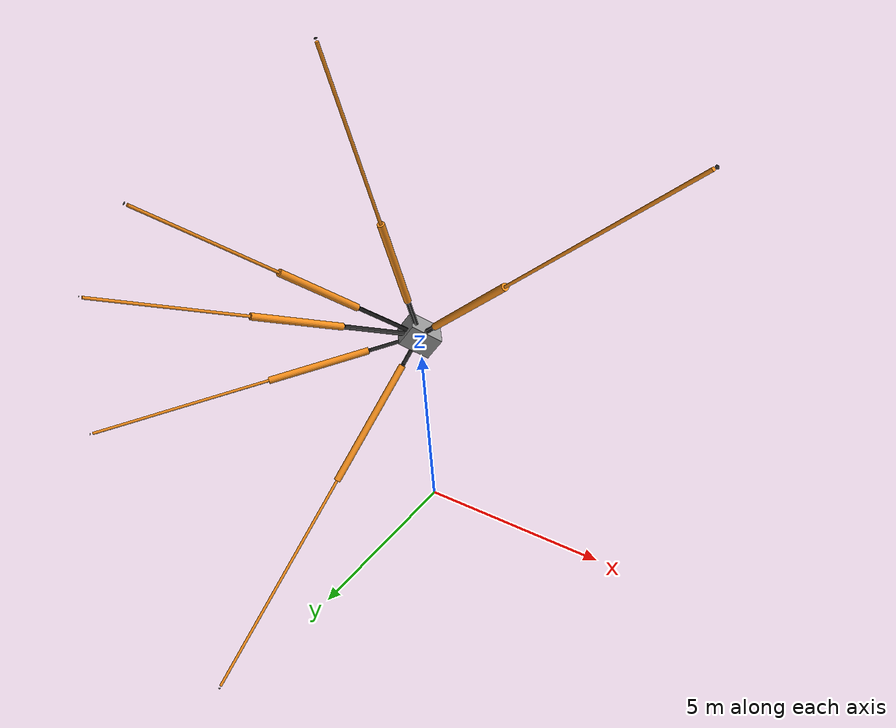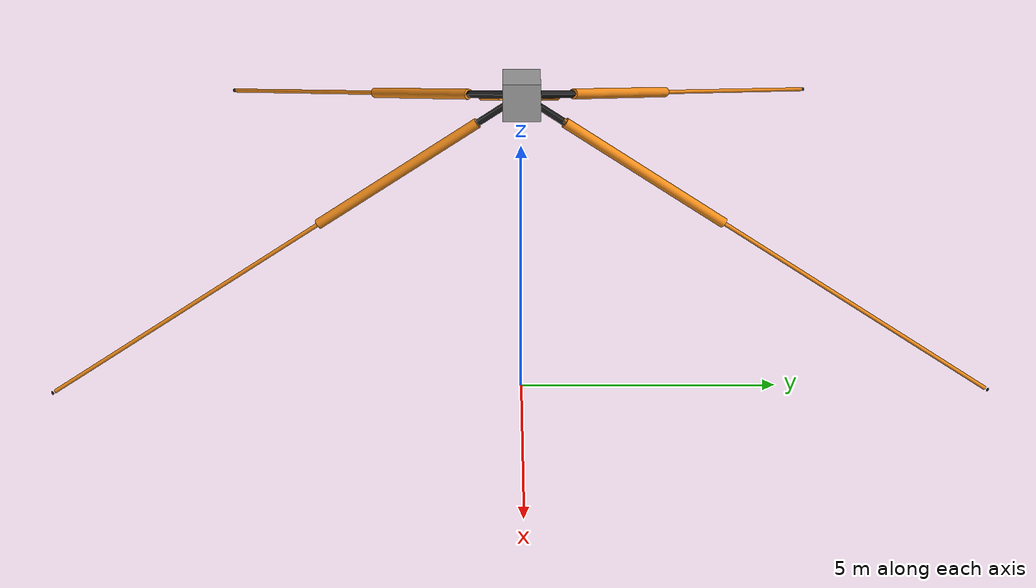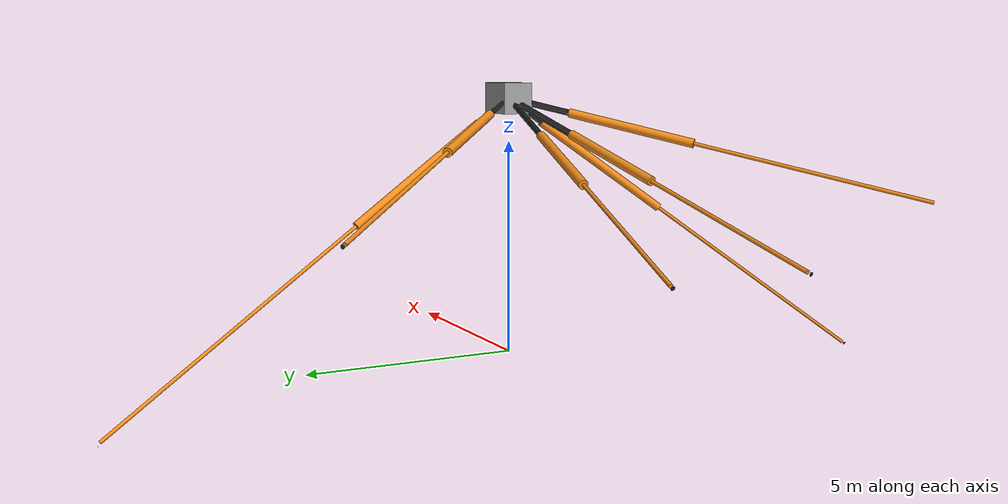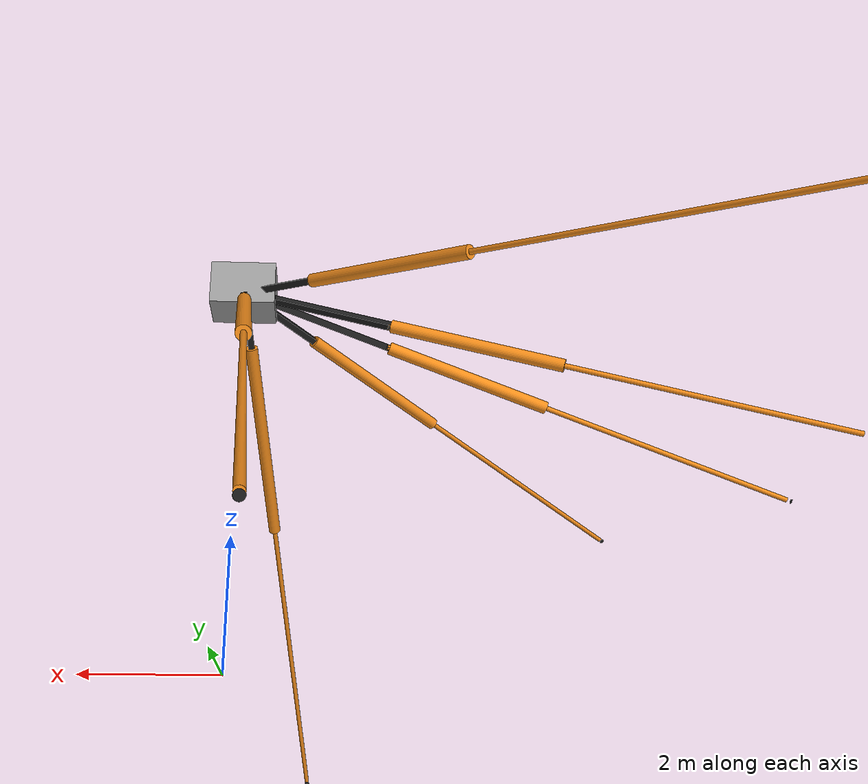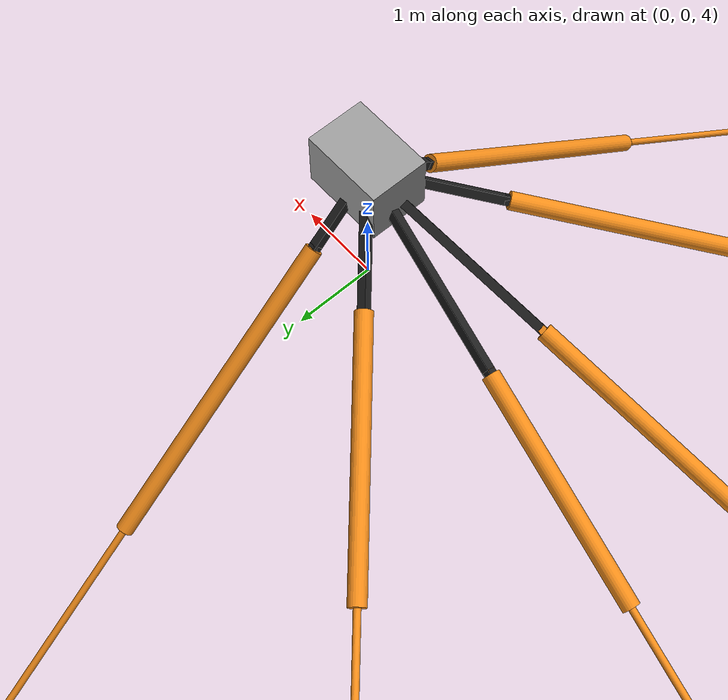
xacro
<?xml version="1.0"?>
<!-- Synthesis of an Ant Hexapod -->
<robot name="antmodel" xmlns:xacro="http://www.ros.org/wiki/xacro">

  <!-- Constants for robot dimensions -->
  <xacro:property name="PI" value="3.1415926535897931"/>

  <xacro:property name="body_mass" value="1" /> <!-- mean value about 10 mg -->
  <xacro:property name="leg_mass"  value="2" /> <!-- guessed value for one leg -> distributed evenly between femur & tibia -->
  <xacro:property name="mass"      value="1" /> <!-- dummy value for joints -->
<xacro:property name="coxa_mass"      value="1" /> <!-- coxa, DOF1 und DOF2 alle coxa_mass >> dritteln -->
<xacro:property name="femur_mass"      value="1" /> <!-- dummy value for joints -->
<xacro:property name="tibia_mass"      value="1" /> <!-- dummy value for joints -->
<xacro:property name="tarsus_mass"      value="1" /> <!-- dummy value for joints -->
<xacro:property name="base_mass"      value="1" /> <!-- dummy value for joints -->

  <xacro:property name="width" value="0.1" /> <!-- Square dimensions (widthxwidth) of beams -->
  <xacro:property name="width1" value="0.1" /> <!-- Square dimensions (widthxwidth) of beams -->
  <xacro:property name="height1" value="0.1" /> <!-- Link 1 -->
  <xacro:property name="height2" value="0.1" /> <!-- Link 2 -->
  <xacro:property name="height3" value="0.1" /> <!-- Link 3 -->

  <!-- Base transformation parameters -->
  <xacro:property name="AZ" value="6" /> <!-- -1*min(PZ(:,5)) 4.0127-->
  <xacro:property name="baseX" value="2.5329" /> <!-- link{1,2}(10,1) -->
  <xacro:property name="baseY" value="0.7012" /> <!-- link{1,2}(10,2) -->
  <xacro:property name="baseZ" value="-0.1418" /> <!-- link{1,2}(10,3) -->
  <xacro:property name="baseLf" value="2.4583" /> <!-- norm(links{1,2}(10,:)) --> <!-- Alessandro front: 2.632-->
  <xacro:property name="baseLm" value="1.5195" /> <!-- norm(links{1,2}(10,:)) -->
  <xacro:property name="baseLr" value="0.9946" /> <!-- norm(links{1,2}(10,:)) -->

 	<!-- front leg -->
  <xacro:property name="ARF" value="-2.0429" /> <!-- base_rotation --> <!-- Roll Pitch Yaw-->
  <xacro:property name="APF" value="0.3039" />
  <xacro:property name="AYF" value="2.9809" />
 	<!-- middle leg -->
  <xacro:property name="ARM" value="-0.6310" />
  <xacro:property name="APM" value="0.2147" />
  <xacro:property name="AYM" value="-2.3994" />
 	<!-- rear leg -->
  <xacro:property name="ARR" value="-2.9311" />
  <xacro:property name="APR" value="0.6044" />
  <xacro:property name="AYR" value="1.6731" />

  <!-- Antleg Parameter --> 	<!-- front leg -->
  <xacro:property name="femur_lenF" value="2.6999"/> <!-- length of femur segment stats{2,2}(1,3)-->
  <xacro:property name="femur_radF" value="0.1"/> <!-- radius of femur segment -->
  <xacro:property name="tibia_lenF" value="4.2717"/> <!-- length of tibia + tarsus segment stats{2,2}(1,4)-->
  <xacro:property name="tibia_radF" value="0.04"/>

  <!-- Antleg Parameter --> 	<!-- middle leg -->
  <xacro:property name="femur_lenM" value="2.9503"/> <!-- length of femur segment stats{2,2}(1,3)-->
  <xacro:property name="femur_radM" value="0.1"/> <!-- radius of femur segment -->
  <xacro:property name="tibia_lenM" value="5.1827"/> <!-- length of tibia + tarsus segment stats{2,2}(1,4)-->
  <xacro:property name="tibia_radM" value="0.04"/>

  <!-- Antleg Parameter --> 	<!-- rear leg -->
  <xacro:property name="femur_lenR" value="3.7715"/> <!-- length of femur segment stats{2,2}(1,3)-->
  <xacro:property name="femur_radR" value="0.1"/> <!-- radius of femur segment -->
  <xacro:property name="tibia_lenR" value="6.8218"/> <!-- length of tibia + tarsus segment stats{2,2}(1,4)-->
  <xacro:property name="tibia_radR" value="0.04"/>

  <!-- Body Parameters -->
  <xacro:property name="body_height" value="0.7" /> <!-- Height of body rectangle -->
  <xacro:property name="body_length" value="1" /> <!-- Length of body rectangle  -->
  <xacro:property name="body_width" value="0.7" /> <!-- Width of body rectangle  -->

  <!-- Import all Gazebo-customization elements, including Gazebo colors -->
  <xacro:include filename="$(find antmodel_description)/urdf/antmodel.gazebo" />
  <!-- Import Rviz colors -->
  <xacro:include filename="$(find antmodel_description)/urdf/materials.xacro" />

  <!-- Macro for calculating inertia of cylinder -->
  <xacro:macro name="cylinder_inertia" params="m r h">
    <inertia  ixx="${m*(3*r*r+h*h)/12.0}" ixy = "0" ixz = "0"
              iyy="${m*(3*r*r+h*h)/12.0}" iyz = "0"
              izz="${m*r*r/2}" />
</xacro:macro>

  <!-- Macro for calculating inertia of box -->
  <xacro:macro name="box_inertia" params="m x y z">
    <inertia  ixx="${m *0.08333 * (y*y + z*z)}" ixy="0.0" ixz="0.0"
	      iyy="${m *0.08333 * (x*x + z*z)}" iyz="0.0"
	      izz="${m *0.08333 * (x*x + y*y)}" />
</xacro:macro>

  <!-- Macro for calculating inertia of sphere -->
<macro name="sphere_inertia" params="m r">
<inertia  ixx="${2*m*r*r/5}" ixy = "0" ixz = "0"
  iyy="${2*m*r*r/5}" iyz = "0"
  izz="${2*m*r*r/5}"
/>
</macro>

<!-- to fix body-->
<link name="world" />
<joint name="world_joint"  type="fixed">
    <origin xyz="0 0 ${AZ/2}" rpy="0 0 0" />
    <parent link="world"/>
    <child link="body"/>
</joint>

<link name="body">
    <visual>
      <origin xyz="0 0 ${AZ/2}" rpy="0 0 0"/>
      <geometry>
	<box size="${body_length} ${body_width} ${body_height}"/>
      </geometry>
    </visual>

<collision>
      <origin xyz="0 0 ${AZ/2}" rpy="0 0 0"/>
      <geometry>
	<box size="${body_length} ${body_width} ${body_height}"/>
      </geometry>
    </collision>

    <inertial>
      <origin xyz="0 0 ${AZ/2}" rpy="0 0 0"/>
      <mass value="${body_mass}"/>

    <box_inertia m="${body_mass}" x="${body_length}" y="${body_width}" z="${body_height}"/>
    </inertial>

  </link>

<!-- Leg Macro -->
<xacro:macro name="leg" params="suffix xyz rpy baseL femur_len femur_rad tibia_len tibia_rad">

 <!-- Base -->
  <link name="base_${suffix}">

    <visual>
      <origin xyz="${baseL/2} 0 0" rpy="0 0 0"/>
      <geometry>
	<box size="${baseL} ${width} ${width}"/>
      </geometry>
    </visual>

  </link>

<!-- Coxa Link -->
  <link name="coxa_${suffix}">

    <visual>
      <origin xyz="0 0 0" rpy="0 0 0"/>
      <geometry>
	<box size="${width} ${width} ${height1}"/>
      </geometry>
      <material name="black"/>
    </visual>

<collision>
      <origin xyz="0 0 0" rpy="0 0 0"/>
      <geometry>
	<box size="${width} ${width} ${height1}"/>
      </geometry>
    </collision>

       <inertial>
      <origin xyz="0 0 0" rpy="0 0 0"/>
      <mass value="${coxa_mass}"/>
	<box_inertia m="${coxa_mass}" x="${width1}" y="${width1}" z="${width1}"/>
    </inertial>

  </link>

    <!-- Link DOF1 -->
  <link name="link1_${suffix}">
    <collision>
      <origin xyz="0 0 0" rpy="0 0 0"/>
      <geometry>
	<box size="${width} ${width} ${height2}"/>
      </geometry>
    </collision>

    <visual>
      <origin xyz="0 0 0" rpy="0 0 0"/>
      <geometry>
	<box size="${width} ${width} ${height2}"/>
      </geometry>
      <material name="black"/>
    </visual>

      <inertial>
      <origin xyz="0 0 0" rpy="0 0 0"/>
         <mass value="${coxa_mass}"/>
	  <box_inertia m="${coxa_mass}" x="${width1}" y="${width1}" z="${width1}"/>
    </inertial>
  </link>

    <!-- Link DOF2 -->
  <link name="link2_${suffix}">
    <collision>
      <origin xyz="0 0 0" rpy="0 0 0"/>
      <geometry>
	<box size="${width} ${width} ${height3}"/>
      </geometry>
    </collision>

    <visual>
      <origin xyz="0 0 0" rpy="0 0 0"/>
      <geometry>
	<box size="${width} ${width} ${height3}"/>
      </geometry>
      <material name="orange"/>
    </visual>

    <inertial>
      <origin xyz="0 0 0" rpy="0 0 0"/>
      <mass value="${coxa_mass}"/>
	<box_inertia m="${coxa_mass}" x="${width1}" y="${width1}" z="${width1}"/>
    </inertial>
  </link>

  <!-- Femur Link -->
  <link name="femur_${suffix}">
    <collision>
      <origin xyz="${femur_len/2} 0 0" rpy="0 ${PI/2} 0"/>
      <geometry>
	<cylinder length="${femur_len}" radius="${femur_rad}"/>
      </geometry>
    </collision>

    <visual>
      <origin xyz="${femur_len/2} 0 0" rpy="0 ${PI/2} 0"/>
      <geometry>
	<cylinder length="${femur_len}" radius="${femur_rad}"/>
      </geometry>
      <material name="orange"/>
    </visual>

   <inertial>
      <origin xyz="${femur_len/2} 0 0" rpy="0 ${PI/2} 0"/>
      <mass value="${femur_mass}"/>
    <cylinder_inertia m="${femur_mass}" r="${femur_rad}" h="${femur_len}"/>
</inertial>
  </link>

  <!-- Tibia Link -->
  <link name="tibia_${suffix}">
    <collision>
      <origin xyz="${tibia_len/2} 0 0" rpy="0 ${PI/2} 0"/>
      <geometry>
	<cylinder length="${tibia_len}" radius="${tibia_rad}"/>
      </geometry>
    </collision>

    <visual>
      <origin xyz="${tibia_len/2} 0 0" rpy="0 ${PI/2} 0"/>
      <geometry>
	<cylinder length="${tibia_len}" radius="${tibia_rad}"/>
      </geometry>
      <material name="orange"/>
    </visual>

    <inertial>
      <origin xyz="${tibia_len/2} 0 0" rpy="0 ${PI/2} 0"/>
      <mass value="${tibia_mass}"/>
    <cylinder_inertia m="${tibia_mass}" r="${tibia_rad}" h="${tibia_len}"/>
</inertial>

<mu>1</mu>
<mu2>1</mu2>
  </link>

<!-- Foot  flat -->
<link name="tarsus_${suffix}">
<collision>
<origin xyz="${2*tibia_rad} 0 0" rpy="0 ${PI/2} 0"/>
<geometry>
	<cylinder length="0.0001" radius="${tibia_rad}"/>
</geometry>
</collision>

<visual>
<origin xyz="${2*tibia_rad} 0 0" rpy="0 ${PI/2} 0"/>
<geometry>
	<cylinder length="0.0001" radius="${tibia_rad}"/>
      </geometry>
      <material name="black"/>
</visual>

<inertial>
      <origin  xyz="${2*tibia_rad} 0 0" rpy="0 ${PI/2} 0"/>
      <mass value="${tibia_mass/5}"/>
    <cylinder_inertia m="${tibia_mass/5}" r="${tibia_rad}" h="${0.0001}"/>
</inertial>

<mu>1</mu>
<mu2>1</mu2>
</link>

<joint name="j_body_${suffix}" type="fixed">
        <parent link="body"/>
        <child link="base_${suffix}"/>
	<origin xyz="${xyz}" rpy="${rpy}" />
</joint>

  <!-- Frame {A} -->
  <joint name="A_${suffix}" type="fixed">
    <parent link="base_${suffix}"/>
    <child link="coxa_${suffix}"/>
    <origin xyz="${baseL} 0 0"/>
  </joint>

  <!-- DOF1 = q1 -->
  <joint name="joint1_${suffix}" type="continuous">
    <parent link="coxa_${suffix}"/>
    <child link="link1_${suffix}"/>
    <origin xyz="0 0 0" rpy="0 0 0"/>
    <axis xyz="0 0 1"/>
    <dynamics damping="1"/>
  </joint>

  <!-- DOF2 = q2 -->
  <joint name="joint2_${suffix}" type="continuous">
    <parent link="link1_${suffix}"/>
    <child link="link2_${suffix}"/>
    <origin xyz="0 0 0" rpy="${-PI/2} 0 0"/>
    <axis xyz="0 0 1"/>
    <dynamics damping="1"/>
  </joint>

  <!-- DOF3 = q3 -->
  <joint name="joint3_${suffix}" type="continuous">
    <parent link="link2_${suffix}"/>
    <child link="femur_${suffix}"/>
    <origin xyz="0 0 0" rpy="${PI/2} 0 0"/>
    <axis xyz="0 0 1"/>
    <dynamics damping="1"/>
  </joint>

  <!-- DOF4 = q4 -->
  <joint name="joint4_${suffix}" type="continuous">
    <parent link="femur_${suffix}"/>
    <child link="tibia_${suffix}"/>
    <origin xyz="${femur_len} 0 0" rpy="0 0 0"/>
    <axis xyz="0 0 1"/>
    <dynamics damping="1"/>
  </joint>

<!--Foot  continuous-->
<joint name="tarsusjoint_${suffix}" type="continuous">
  <parent link="tibia_${suffix}"/>
  <child link="tarsus_${suffix}"/>
  <origin xyz="${tibia_len} 0 0" rpy="0 0 0"/>
    <axis xyz="0 0 1"/>
    <dynamics damping="1"/>
</joint>

<!-- Force torque senors in all joints publishing on topics-->
<gazebo reference="joint1_${suffix}">
<provideFeedback>true</provideFeedback>
</gazebo>
<!-- The ft_sensor plugin -->
<gazebo>
<plugin name="ft_sensor" filename="libgazebo_ros_ft_sensor.so">
<updateRate>100.0</updateRate>
<topicName>ft_sensor_joint1_${suffix}</topicName>
<jointName>joint1_${suffix}</jointName>
</plugin>
</gazebo>

<gazebo reference="joint2_${suffix}">
<provideFeedback>true</provideFeedback>
</gazebo>
<!-- The ft_sensor plugin -->
<gazebo>
<plugin name="ft_sensor" filename="libgazebo_ros_ft_sensor.so">
<updateRate>100.0</updateRate>
<topicName>ft_sensor_joint2_${suffix}</topicName>
<jointName>joint2_${suffix}</jointName>
</plugin>
</gazebo>

<gazebo reference="joint3_${suffix}">
<provideFeedback>true</provideFeedback>
</gazebo>
<!-- The ft_sensor plugin -->
<gazebo>
<plugin name="ft_sensor" filename="libgazebo_ros_ft_sensor.so">
<updateRate>100.0</updateRate>
<topicName>ft_sensor_joint3_${suffix}</topicName>
<jointName>joint3_${suffix}</jointName>
</plugin>
</gazebo>

<gazebo reference="joint4_${suffix}">
<provideFeedback>true</provideFeedback>
</gazebo>
<!-- The ft_sensor plugin -->
<gazebo>
<plugin name="ft_sensor" filename="libgazebo_ros_ft_sensor.so">
<updateRate>100.0</updateRate>
<topicName>ft_sensor_joint4_${suffix}</topicName>
<jointName>joint4_${suffix}</jointName>
</plugin>
</gazebo>

<gazebo reference="tarsusjoint_${suffix}">
<provideFeedback>true</provideFeedback>
</gazebo>
<!-- The ft_sensor plugin -->
<gazebo>
<plugin name="ft_sensor" filename="libgazebo_ros_ft_sensor.so">
<updateRate>100.0</updateRate>
<topicName>ft_sensor_tarsusjoint_${suffix}</topicName>
<jointName>tarsusjoint_${suffix}</jointName>
</plugin>
</gazebo>

  <gazebo reference="coxa_${suffix}">
    <material>Gazebo/Blue</material>
  </gazebo>
   <gazebo reference="femur_${suffix}">
    <material>Gazebo/Green</material>
  </gazebo>
   <gazebo reference="link1_${suffix}">
    <material>Gazebo/Orange</material>
  </gazebo>
   <gazebo reference="link2_${suffix}">
    <material>Gazebo/Red</material>
  </gazebo>
  <gazebo reference="body">
   <material>Gazebo/GreyTransparent</material>
  </gazebo>
  <gazebo reference="base_${suffix}">
    <material>Gazebo/Black</material>
  </gazebo>
 <gazebo reference="tarsus_${suffix}">
    <material>Gazebo/Orange</material>
  </gazebo>

  <!-- Transmission to ROS -->
  <transmission name="tran1_${suffix}">
    <type>transmission_interface/SimpleTransmission</type>
    <joint name="joint1_${suffix}">
      <hardwareInterface>hardware_interface/EffortJointInterface</hardwareInterface>
    </joint>
    <actuator name="motor1_${suffix}">
      <hardwareInterface>hardware_interface/EffortJointInterface</hardwareInterface>
      <mechanicalReduction>1</mechanicalReduction>
    </actuator>
  </transmission>

  <transmission name="tran2_${suffix}">
    <type>transmission_interface/SimpleTransmission</type>
    <joint name="joint2_${suffix}">
      <hardwareInterface>hardware_interface/EffortJointInterface</hardwareInterface>
    </joint>
    <actuator name="motor2_${suffix}">
      <hardwareInterface>hardware_interface/EffortJointInterface</hardwareInterface>
      <mechanicalReduction>1</mechanicalReduction>
    </actuator>
  </transmission>

  <transmission name="tran3_${suffix}">
    <type>transmission_interface/SimpleTransmission</type>
    <joint name="joint3_${suffix}">
      <hardwareInterface>hardware_interface/EffortJointInterface</hardwareInterface>
    </joint>
    <actuator name="motor3_${suffix}">
      <hardwareInterface>hardware_interface/EffortJointInterface</hardwareInterface>
      <mechanicalReduction>1</mechanicalReduction>
    </actuator>
  </transmission>
  <transmission name="tran4_${suffix}">
    <type>transmission_interface/SimpleTransmission</type>
    <joint name="joint4_${suffix}">
      <hardwareInterface>hardware_interface/EffortJointInterface</hardwareInterface>
    </joint>
    <actuator name="motor4_${suffix}">
      <hardwareInterface>hardware_interface/EffortJointInterface</hardwareInterface>
      <mechanicalReduction>1</mechanicalReduction>
    </actuator>
  </transmission>

</xacro:macro>

<xacro:leg suffix="lf" xyz="0 0 ${AZ/2}" rpy="${ARF} ${APF} ${AYF}" baseL = "${baseLf}" femur_len ="${femur_lenF}" femur_rad="${femur_radF}" tibia_len ="${tibia_lenF}" tibia_rad="${tibia_radF}" />
<xacro:leg suffix="lm" xyz="0 0 ${AZ/2}" rpy="${ARM} ${APM} ${AYM}" baseL = "${baseLm}" femur_len ="${femur_lenM}" femur_rad="${femur_radM}" tibia_len ="${tibia_lenM}" tibia_rad="${tibia_radM}"/>
<xacro:leg suffix="lr" xyz="0 0 ${AZ/2}" rpy="${ARR} ${APR} ${AYR}" baseL = "${baseLr}" femur_len ="${femur_lenR}" femur_rad="${femur_radR}" tibia_len ="${tibia_lenR}" tibia_rad="${tibia_radR}"/>

<xacro:leg suffix="rf" xyz="0 0 ${AZ/2}" rpy="${PI-ARF} ${APF} ${-AYF}" baseL = "${baseLf}" femur_len ="${femur_lenF}" femur_rad="${femur_radF}" tibia_len ="${tibia_lenF}" tibia_rad="${tibia_radF}"/>
<xacro:leg suffix="rm" xyz="0 0 ${AZ/2}" rpy="${PI-ARM} ${APM} ${-AYM}" baseL = "${baseLm}" femur_len ="${femur_lenM}" femur_rad="${femur_radM}" tibia_len ="${tibia_lenM}" tibia_rad="${tibia_radM}"/>
<xacro:leg suffix="rr" xyz="0 0 ${AZ/2}" rpy="${PI-ARR} ${APR} ${-AYR}" baseL = "${baseLr}" femur_len ="${femur_lenR}" femur_rad="${femur_radR}" tibia_len ="${tibia_lenR}" tibia_rad="${tibia_radR}"/>

</robot>
